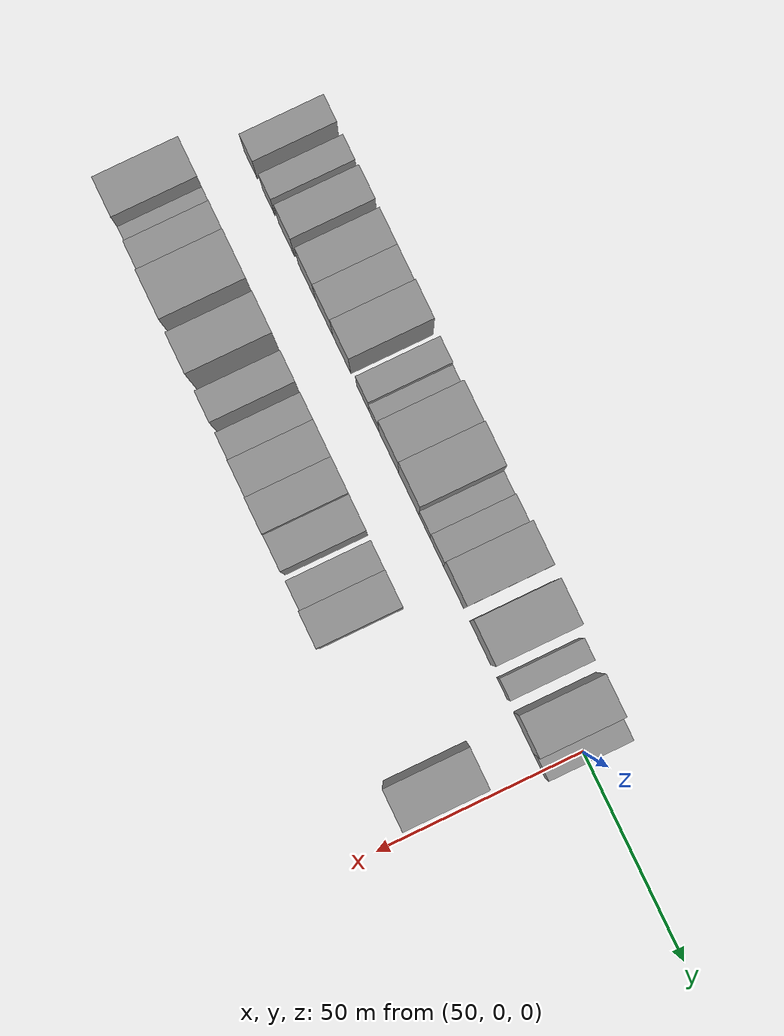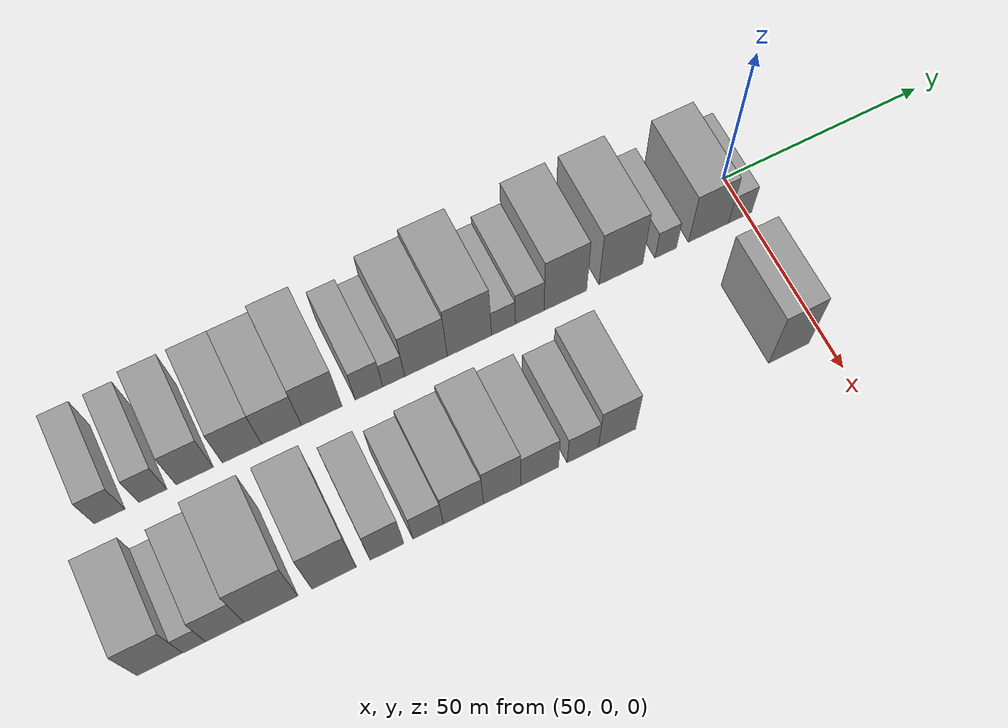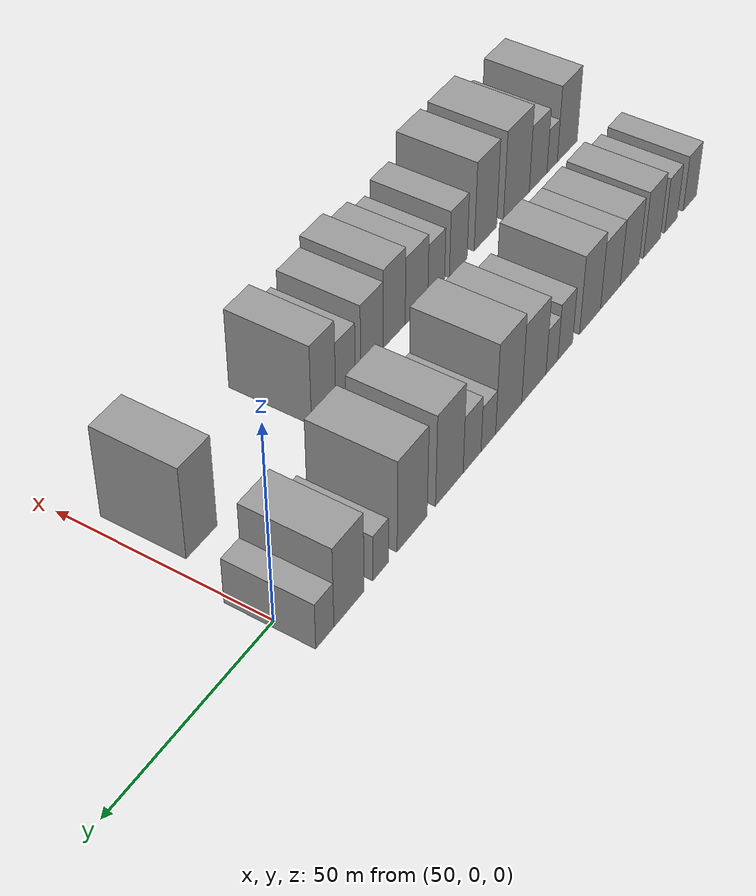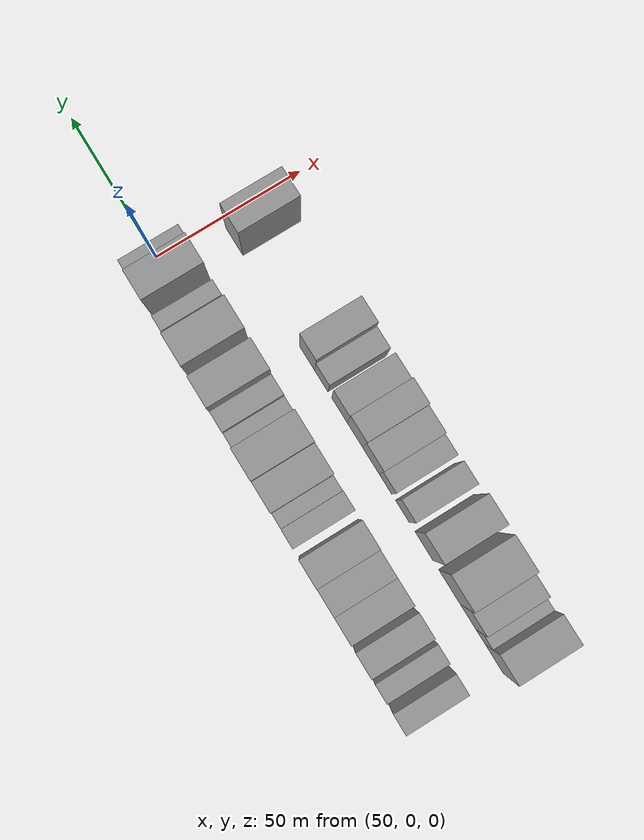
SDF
<sdf version="1.6">
 <world name="default">
  <model name="building_16">
   <static>1</static>
   <pose>50.0000 -148.0049 0 0.000000 0.000000 0.000000</pose>
   <link name="link">
    <pose>0 0 7.50 0 0 0</pose>
    <collision name="collision"><geometry><box><size>20.0000 6.5941 15.0000</size></box></geometry></collision>
    <visual name="visual">
     <cast_shadows>0</cast_shadows>
     <geometry><box><size>20.0000 6.5941 15.0000</size></box></geometry>
     <material>
      <script>
       <uri>model://grey_wall/materials/scripts</uri>
       <uri>model://grey_wall/materials/textures</uri>
       <name>vrc/grey_wall</name>
      </script>
     </material>
    </visual>
   </link>
  </model>
  <model name="building_17">
   <static>1</static>
   <pose>50.0000 -138.6632 0 0.000000 0.000000 0.000000</pose>
   <link name="link">
    <pose>0 0 7.50 0 0 0</pose>
    <collision name="collision"><geometry><box><size>20.0000 6.0894 15.0000</size></box></geometry></collision>
    <visual name="visual">
     <cast_shadows>0</cast_shadows>
     <geometry><box><size>20.0000 6.0894 15.0000</size></box></geometry>
     <material>
      <script>
       <uri>model://grey_wall/materials/scripts</uri>
       <uri>model://grey_wall/materials/textures</uri>
       <name>vrc/grey_wall</name>
      </script>
     </material>
    </visual>
   </link>
  </model>
  <model name="building_18">
   <static>1</static>
   <pose>50.0000 -129.5498 0 0.000000 0.000000 0.000000</pose>
   <link name="link">
    <pose>0 0 9.00 0 0 0</pose>
    <collision name="collision"><geometry><box><size>20.0000 8.1373 18.0000</size></box></geometry></collision>
    <visual name="visual">
     <cast_shadows>0</cast_shadows>
     <geometry><box><size>20.0000 8.1373 18.0000</size></box></geometry>
     <material>
      <script>
       <uri>model://grey_wall/materials/scripts</uri>
       <uri>model://grey_wall/materials/textures</uri>
       <name>vrc/grey_wall</name>
      </script>
     </material>
    </visual>
   </link>
  </model>
  <model name="building_19">
   <static>1</static>
   <pose>50.0000 -119.1275 0 0.000000 0.000000 0.000000</pose>
   <link name="link">
    <pose>0 0 9.00 0 0 0</pose>
    <collision name="collision"><geometry><box><size>20.0000 8.7075 18.0000</size></box></geometry></collision>
    <visual name="visual">
     <cast_shadows>0</cast_shadows>
     <geometry><box><size>20.0000 8.7075 18.0000</size></box></geometry>
     <material>
      <script>
       <uri>model://grey_wall/materials/scripts</uri>
       <uri>model://grey_wall/materials/textures</uri>
       <name>vrc/grey_wall</name>
      </script>
     </material>
    </visual>
   </link>
  </model>
  <model name="building_20">
   <static>1</static>
   <pose>50.0000 -110.3166 0 0.000000 0.000000 0.000000</pose>
   <link name="link">
    <pose>0 0 9.00 0 0 0</pose>
    <collision name="collision"><geometry><box><size>20.0000 8.9142 18.0000</size></box></geometry></collision>
    <visual name="visual">
     <cast_shadows>0</cast_shadows>
     <geometry><box><size>20.0000 8.9142 18.0000</size></box></geometry>
     <material>
      <script>
       <uri>model://grey_wall/materials/scripts</uri>
       <uri>model://grey_wall/materials/textures</uri>
       <name>vrc/grey_wall</name>
      </script>
     </material>
    </visual>
   </link>
  </model>
  <model name="building_21">
   <static>1</static>
   <pose>50.0000 -101.2761 0 0.000000 0.000000 0.000000</pose>
   <link name="link">
    <pose>0 0 10.50 0 0 0</pose>
    <collision name="collision"><geometry><box><size>20.0000 9.1668 21.0000</size></box></geometry></collision>
    <visual name="visual">
     <cast_shadows>0</cast_shadows>
     <geometry><box><size>20.0000 9.1668 21.0000</size></box></geometry>
     <material>
      <script>
       <uri>model://grey_wall/materials/scripts</uri>
       <uri>model://grey_wall/materials/textures</uri>
       <name>vrc/grey_wall</name>
      </script>
     </material>
    </visual>
   </link>
  </model>
  <model name="building_22">
   <static>1</static>
   <pose>50.0000 -90.5518 0 0.000000 0.000000 0.000000</pose>
   <link name="link">
    <pose>0 0 7.50 0 0 0</pose>
    <collision name="collision"><geometry><box><size>20.0000 6.2818 15.0000</size></box></geometry></collision>
    <visual name="visual">
     <cast_shadows>0</cast_shadows>
     <geometry><box><size>20.0000 6.2818 15.0000</size></box></geometry>
     <material>
      <script>
       <uri>model://grey_wall/materials/scripts</uri>
       <uri>model://grey_wall/materials/textures</uri>
       <name>vrc/grey_wall</name>
      </script>
     </material>
    </visual>
   </link>
  </model>
  <model name="building_23">
   <static>1</static>
   <pose>50.0000 -84.8986 0 0.000000 0.000000 0.000000</pose>
   <link name="link">
    <pose>0 0 6.00 0 0 0</pose>
    <collision name="collision"><geometry><box><size>20.0000 5.0246 12.0000</size></box></geometry></collision>
    <visual name="visual">
     <cast_shadows>0</cast_shadows>
     <geometry><box><size>20.0000 5.0246 12.0000</size></box></geometry>
     <material>
      <script>
       <uri>model://grey_wall/materials/scripts</uri>
       <uri>model://grey_wall/materials/textures</uri>
       <name>vrc/grey_wall</name>
      </script>
     </material>
    </visual>
   </link>
  </model>
  <model name="building_24">
   <static>1</static>
   <pose>50.0000 -77.4337 0 0.000000 0.000000 0.000000</pose>
   <link name="link">
    <pose>0 0 10.50 0 0 0</pose>
    <collision name="collision"><geometry><box><size>20.0000 9.9053 21.0000</size></box></geometry></collision>
    <visual name="visual">
     <cast_shadows>0</cast_shadows>
     <geometry><box><size>20.0000 9.9053 21.0000</size></box></geometry>
     <material>
      <script>
       <uri>model://grey_wall/materials/scripts</uri>
       <uri>model://grey_wall/materials/textures</uri>
       <name>vrc/grey_wall</name>
      </script>
     </material>
    </visual>
   </link>
  </model>
  <model name="building_25">
   <static>1</static>
   <pose>50.0000 -67.3081 0 0.000000 0.000000 0.000000</pose>
   <link name="link">
    <pose>0 0 12.00 0 0 0</pose>
    <collision name="collision"><geometry><box><size>20.0000 10.3458 24.0000</size></box></geometry></collision>
    <visual name="visual">
     <cast_shadows>0</cast_shadows>
     <geometry><box><size>20.0000 10.3458 24.0000</size></box></geometry>
     <material>
      <script>
       <uri>model://grey_wall/materials/scripts</uri>
       <uri>model://grey_wall/materials/textures</uri>
       <name>vrc/grey_wall</name>
      </script>
     </material>
    </visual>
   </link>
  </model>
  <model name="building_26">
   <static>1</static>
   <pose>50.0000 -59.3123 0 0.000000 0.000000 0.000000</pose>
   <link name="link">
    <pose>0 0 6.00 0 0 0</pose>
    <collision name="collision"><geometry><box><size>20.0000 5.6458 12.0000</size></box></geometry></collision>
    <visual name="visual">
     <cast_shadows>0</cast_shadows>
     <geometry><box><size>20.0000 5.6458 12.0000</size></box></geometry>
     <material>
      <script>
       <uri>model://grey_wall/materials/scripts</uri>
       <uri>model://grey_wall/materials/textures</uri>
       <name>vrc/grey_wall</name>
      </script>
     </material>
    </visual>
   </link>
  </model>
  <model name="building_27">
   <static>1</static>
   <pose>50.0000 -53.0822 0 0.000000 0.000000 0.000000</pose>
   <link name="link">
    <pose>0 0 7.50 0 0 0</pose>
    <collision name="collision"><geometry><box><size>20.0000 6.8145 15.0000</size></box></geometry></collision>
    <visual name="visual">
     <cast_shadows>0</cast_shadows>
     <geometry><box><size>20.0000 6.8145 15.0000</size></box></geometry>
     <material>
      <script>
       <uri>model://grey_wall/materials/scripts</uri>
       <uri>model://grey_wall/materials/textures</uri>
       <name>vrc/grey_wall</name>
      </script>
     </material>
    </visual>
   </link>
  </model>
  <model name="building_28">
   <static>1</static>
   <pose>50.0000 -44.5642 0 0.000000 0.000000 0.000000</pose>
   <link name="link">
    <pose>0 0 12.00 0 0 0</pose>
    <collision name="collision"><geometry><box><size>20.0000 10.2215 24.0000</size></box></geometry></collision>
    <visual name="visual">
     <cast_shadows>0</cast_shadows>
     <geometry><box><size>20.0000 10.2215 24.0000</size></box></geometry>
     <material>
      <script>
       <uri>model://grey_wall/materials/scripts</uri>
       <uri>model://grey_wall/materials/textures</uri>
       <name>vrc/grey_wall</name>
      </script>
     </material>
    </visual>
   </link>
  </model>
  <model name="building_29">
   <static>1</static>
   <pose>50.0000 -31.1216 0 0.000000 0.000000 0.000000</pose>
   <link name="link">
    <pose>0 0 12.00 0 0 0</pose>
    <collision name="collision"><geometry><box><size>20.0000 10.6637 24.0000</size></box></geometry></collision>
    <visual name="visual">
     <cast_shadows>0</cast_shadows>
     <geometry><box><size>20.0000 10.6637 24.0000</size></box></geometry>
     <material>
      <script>
       <uri>model://grey_wall/materials/scripts</uri>
       <uri>model://grey_wall/materials/textures</uri>
       <name>vrc/grey_wall</name>
      </script>
     </material>
    </visual>
   </link>
  </model>
  <model name="building_30">
   <static>1</static>
   <pose>50.0000 -20.1444 0 0.000000 0.000000 0.000000</pose>
   <link name="link">
    <pose>0 0 6.00 0 0 0</pose>
    <collision name="collision"><geometry><box><size>20.0000 5.2907 12.0000</size></box></geometry></collision>
    <visual name="visual">
     <cast_shadows>0</cast_shadows>
     <geometry><box><size>20.0000 5.2907 12.0000</size></box></geometry>
     <material>
      <script>
       <uri>model://grey_wall/materials/scripts</uri>
       <uri>model://grey_wall/materials/textures</uri>
       <name>vrc/grey_wall</name>
      </script>
     </material>
    </visual>
   </link>
  </model>
  <model name="building_31">
   <static>1</static>
   <pose>50.0000 -9.5176 0 0.000000 0.000000 0.000000</pose>
   <link name="link">
    <pose>0 0 10.50 0 0 0</pose>
    <collision name="collision"><geometry><box><size>20.0000 9.9630 21.0000</size></box></geometry></collision>
    <visual name="visual">
     <cast_shadows>0</cast_shadows>
     <geometry><box><size>20.0000 9.9630 21.0000</size></box></geometry>
     <material>
      <script>
       <uri>model://grey_wall/materials/scripts</uri>
       <uri>model://grey_wall/materials/textures</uri>
       <name>vrc/grey_wall</name>
      </script>
     </material>
    </visual>
   </link>
  </model>
  <model name="building_32">
   <static>1</static>
   <pose>50.0000 -1.6180 0 0.000000 0.000000 0.000000</pose>
   <link name="link">
    <pose>0 0 6.00 0 0 0</pose>
    <collision name="collision"><geometry><box><size>20.0000 5.8362 12.0000</size></box></geometry></collision>
    <visual name="visual">
     <cast_shadows>0</cast_shadows>
     <geometry><box><size>20.0000 5.8362 12.0000</size></box></geometry>
     <material>
      <script>
       <uri>model://grey_wall/materials/scripts</uri>
       <uri>model://grey_wall/materials/textures</uri>
       <name>vrc/grey_wall</name>
      </script>
     </material>
    </visual>
   </link>
  </model>
  <model name="building_78">
   <static>1</static>
   <pose>82.0000 -149.9595 0 0.000000 0.000000 0.000000</pose>
   <link name="link">
    <pose>0 0 10.50 0 0 0</pose>
    <collision name="collision"><geometry><box><size>20.0000 9.4634 21.0000</size></box></geometry></collision>
    <visual name="visual">
     <cast_shadows>0</cast_shadows>
     <geometry><box><size>20.0000 9.4634 21.0000</size></box></geometry>
     <material>
      <script>
       <uri>model://grey_wall/materials/scripts</uri>
       <uri>model://grey_wall/materials/textures</uri>
       <name>vrc/grey_wall</name>
      </script>
     </material>
    </visual>
   </link>
  </model>
  <model name="building_79">
   <static>1</static>
   <pose>82.0000 -142.8215 0 0.000000 0.000000 0.000000</pose>
   <link name="link">
    <pose>0 0 6.00 0 0 0</pose>
    <collision name="collision"><geometry><box><size>20.0000 4.8126 12.0000</size></box></geometry></collision>
    <visual name="visual">
     <cast_shadows>0</cast_shadows>
     <geometry><box><size>20.0000 4.8126 12.0000</size></box></geometry>
     <material>
      <script>
       <uri>model://grey_wall/materials/scripts</uri>
       <uri>model://grey_wall/materials/textures</uri>
       <name>vrc/grey_wall</name>
      </script>
     </material>
    </visual>
   </link>
  </model>
  <model name="building_80">
   <static>1</static>
   <pose>82.0000 -136.3421 0 0.000000 0.000000 0.000000</pose>
   <link name="link">
    <pose>0 0 9.00 0 0 0</pose>
    <collision name="collision"><geometry><box><size>20.0000 8.1463 18.0000</size></box></geometry></collision>
    <visual name="visual">
     <cast_shadows>0</cast_shadows>
     <geometry><box><size>20.0000 8.1463 18.0000</size></box></geometry>
     <material>
      <script>
       <uri>model://grey_wall/materials/scripts</uri>
       <uri>model://grey_wall/materials/textures</uri>
       <name>vrc/grey_wall</name>
      </script>
     </material>
    </visual>
   </link>
  </model>
  <model name="building_81">
   <static>1</static>
   <pose>82.0000 -126.5177 0 0.000000 0.000000 0.000000</pose>
   <link name="link">
    <pose>0 0 12.00 0 0 0</pose>
    <collision name="collision"><geometry><box><size>20.0000 11.5023 24.0000</size></box></geometry></collision>
    <visual name="visual">
     <cast_shadows>0</cast_shadows>
     <geometry><box><size>20.0000 11.5023 24.0000</size></box></geometry>
     <material>
      <script>
       <uri>model://grey_wall/materials/scripts</uri>
       <uri>model://grey_wall/materials/textures</uri>
       <name>vrc/grey_wall</name>
      </script>
     </material>
    </visual>
   </link>
  </model>
  <model name="building_82">
   <static>1</static>
   <pose>82.0000 -112.9433 0 0.000000 0.000000 0.000000</pose>
   <link name="link">
    <pose>0 0 12.00 0 0 0</pose>
    <collision name="collision"><geometry><box><size>20.0000 9.6467 24.0000</size></box></geometry></collision>
    <visual name="visual">
     <cast_shadows>0</cast_shadows>
     <geometry><box><size>20.0000 9.6467 24.0000</size></box></geometry>
     <material>
      <script>
       <uri>model://grey_wall/materials/scripts</uri>
       <uri>model://grey_wall/materials/textures</uri>
       <name>vrc/grey_wall</name>
      </script>
     </material>
    </visual>
   </link>
  </model>
  <model name="building_83">
   <static>1</static>
   <pose>82.0000 -101.4091 0 0.000000 0.000000 0.000000</pose>
   <link name="link">
    <pose>0 0 9.00 0 0 0</pose>
    <collision name="collision"><geometry><box><size>20.0000 7.4216 18.0000</size></box></geometry></collision>
    <visual name="visual">
     <cast_shadows>0</cast_shadows>
     <geometry><box><size>20.0000 7.4216 18.0000</size></box></geometry>
     <material>
      <script>
       <uri>model://grey_wall/materials/scripts</uri>
       <uri>model://grey_wall/materials/textures</uri>
       <name>vrc/grey_wall</name>
      </script>
     </material>
    </visual>
   </link>
  </model>
  <model name="building_84">
   <static>1</static>
   <pose>82.0000 -92.3058 0 0.000000 0.000000 0.000000</pose>
   <link name="link">
    <pose>0 0 7.50 0 0 0</pose>
    <collision name="collision"><geometry><box><size>20.0000 6.7851 15.0000</size></box></geometry></collision>
    <visual name="visual">
     <cast_shadows>0</cast_shadows>
     <geometry><box><size>20.0000 6.7851 15.0000</size></box></geometry>
     <material>
      <script>
       <uri>model://grey_wall/materials/scripts</uri>
       <uri>model://grey_wall/materials/textures</uri>
       <name>vrc/grey_wall</name>
      </script>
     </material>
    </visual>
   </link>
  </model>
  <model name="building_85">
   <static>1</static>
   <pose>82.0000 -84.4193 0 0.000000 0.000000 0.000000</pose>
   <link name="link">
    <pose>0 0 9.00 0 0 0</pose>
    <collision name="collision"><geometry><box><size>20.0000 8.9878 18.0000</size></box></geometry></collision>
    <visual name="visual">
     <cast_shadows>0</cast_shadows>
     <geometry><box><size>20.0000 8.9878 18.0000</size></box></geometry>
     <material>
      <script>
       <uri>model://grey_wall/materials/scripts</uri>
       <uri>model://grey_wall/materials/textures</uri>
       <name>vrc/grey_wall</name>
      </script>
     </material>
    </visual>
   </link>
  </model>
  <model name="building_86">
   <static>1</static>
   <pose>82.0000 -75.6813 0 0.000000 0.000000 0.000000</pose>
   <link name="link">
    <pose>0 0 10.50 0 0 0</pose>
    <collision name="collision"><geometry><box><size>20.0000 8.4882 21.0000</size></box></geometry></collision>
    <visual name="visual">
     <cast_shadows>0</cast_shadows>
     <geometry><box><size>20.0000 8.4882 21.0000</size></box></geometry>
     <material>
      <script>
       <uri>model://grey_wall/materials/scripts</uri>
       <uri>model://grey_wall/materials/textures</uri>
       <name>vrc/grey_wall</name>
      </script>
     </material>
    </visual>
   </link>
  </model>
  <model name="building_87">
   <static>1</static>
   <pose>82.0000 -67.1716 0 0.000000 0.000000 0.000000</pose>
   <link name="link">
    <pose>0 0 9.00 0 0 0</pose>
    <collision name="collision"><geometry><box><size>20.0000 8.5313 18.0000</size></box></geometry></collision>
    <visual name="visual">
     <cast_shadows>0</cast_shadows>
     <geometry><box><size>20.0000 8.5313 18.0000</size></box></geometry>
     <material>
      <script>
       <uri>model://grey_wall/materials/scripts</uri>
       <uri>model://grey_wall/materials/textures</uri>
       <name>vrc/grey_wall</name>
      </script>
     </material>
    </visual>
   </link>
  </model>
  <model name="building_88">
   <static>1</static>
   <pose>82.0000 -57.3082 0 0.000000 0.000000 0.000000</pose>
   <link name="link">
    <pose>0 0 7.50 0 0 0</pose>
    <collision name="collision"><geometry><box><size>20.0000 7.1954 15.0000</size></box></geometry></collision>
    <visual name="visual">
     <cast_shadows>0</cast_shadows>
     <geometry><box><size>20.0000 7.1954 15.0000</size></box></geometry>
     <material>
      <script>
       <uri>model://grey_wall/materials/scripts</uri>
       <uri>model://grey_wall/materials/textures</uri>
       <name>vrc/grey_wall</name>
      </script>
     </material>
    </visual>
   </link>
  </model>
  <model name="building_89">
   <static>1</static>
   <pose>82.0000 -49.3834 0 0.000000 0.000000 0.000000</pose>
   <link name="link">
    <pose>0 0 10.50 0 0 0</pose>
    <collision name="collision"><geometry><box><size>20.0000 8.6541 21.0000</size></box></geometry></collision>
    <visual name="visual">
     <cast_shadows>0</cast_shadows>
     <geometry><box><size>20.0000 8.6541 21.0000</size></box></geometry>
     <material>
      <script>
       <uri>model://grey_wall/materials/scripts</uri>
       <uri>model://grey_wall/materials/textures</uri>
       <name>vrc/grey_wall</name>
      </script>
     </material>
    </visual>
   </link>
  </model>
  <model name="building_90">
   <static>1</static>
   <pose>82.0000 -8.3676 0 0.000000 0.000000 0.000000</pose>
   <link name="link">
    <pose>0 0 12.00 0 0 0</pose>
    <collision name="collision"><geometry><box><size>20.0000 9.7925 24.0000</size></box></geometry></collision>
    <visual name="visual">
     <cast_shadows>0</cast_shadows>
     <geometry><box><size>20.0000 9.7925 24.0000</size></box></geometry>
     <material>
      <script>
       <uri>model://grey_wall/materials/scripts</uri>
       <uri>model://grey_wall/materials/textures</uri>
       <name>vrc/grey_wall</name>
      </script>
     </material>
    </visual>
   </link>
  </model>
 </world>
</sdf>
